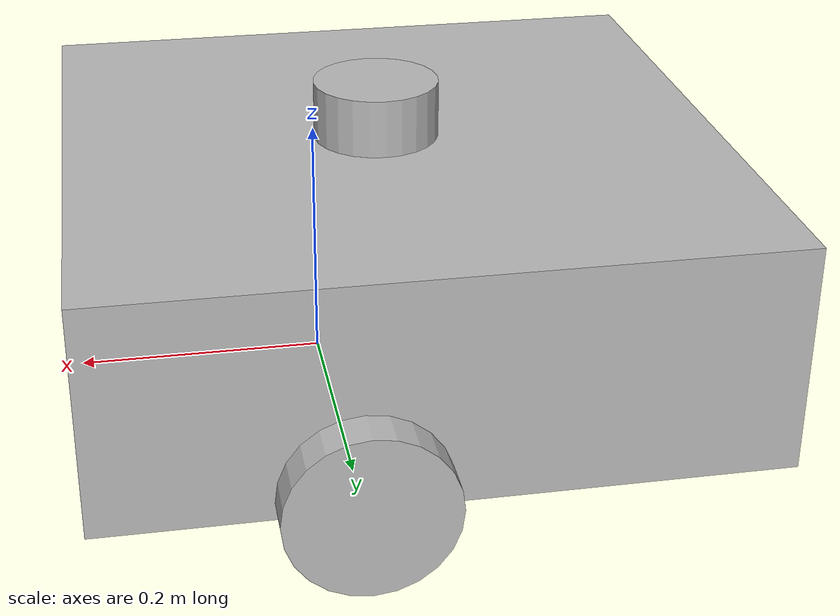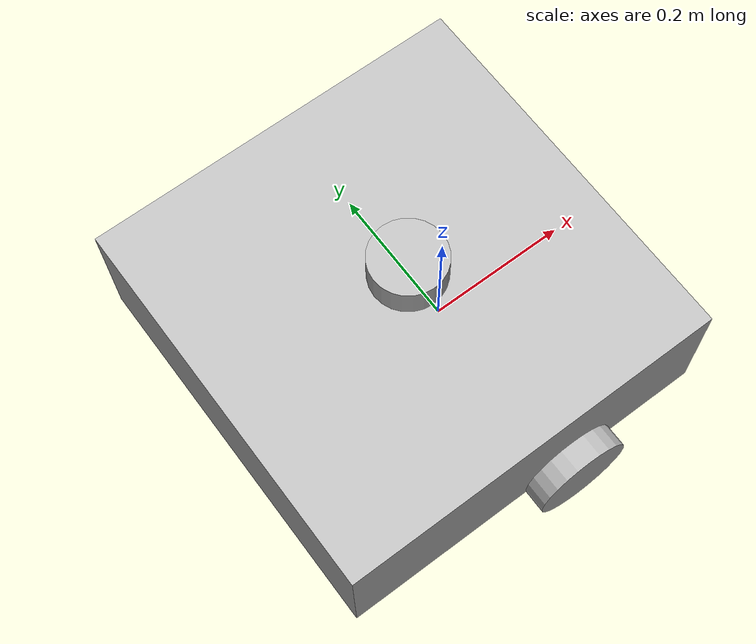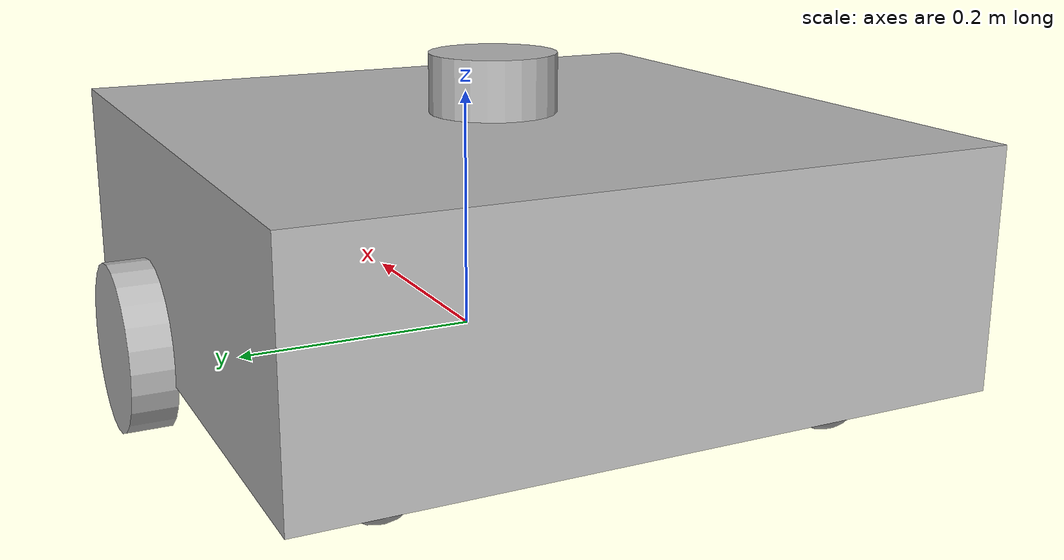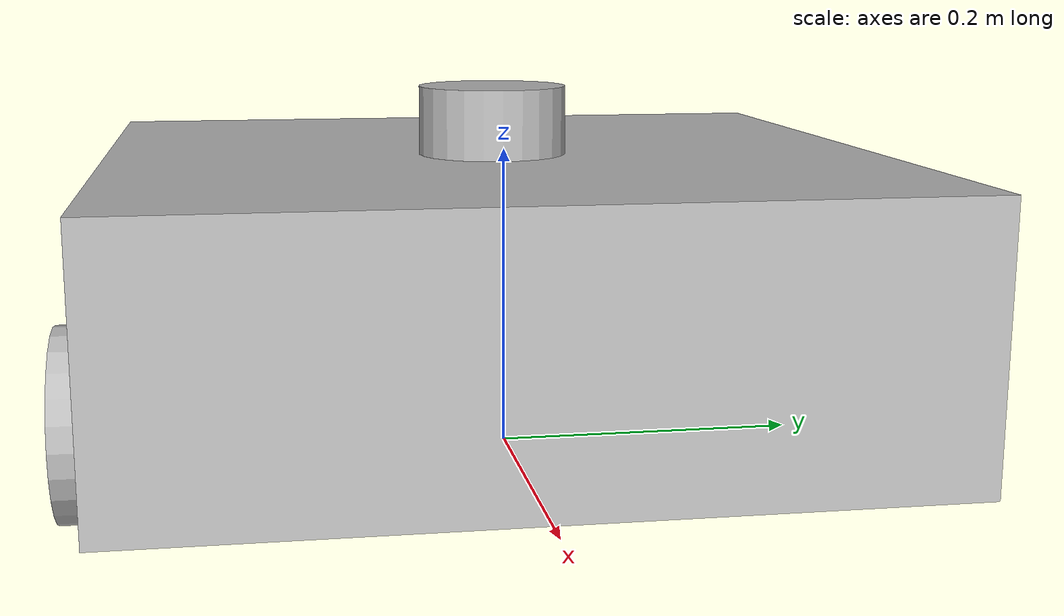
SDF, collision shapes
<?xml version="1.0" ?>
<sdf version="1.8">
  <model name="turtlebot3_waffle">
  <pose>0.0 0.0 0.0 0.0 0.0 0.0</pose>

    <link name="base_footprint"/>

    <link name="base_link">

      <inertial>
        <pose>-0.064 0 0.1 0 0 0</pose>
        <inertia>
          <ixx>4.2111447e-02</ixx>
          <ixy>0</ixy>
          <ixz>0</ixz>
          <iyy>4.2111447e-02</iyy>
          <iyz>0</iyz>
          <izz>7.5254874e-02</izz>
        </inertia>
        <mass>1.3729096e+00</mass>
      </inertial>

      <collision name="base_collision">
        <pose>-0.064 0 0.1 0 0 0</pose>
        <geometry>
          <box>
            <size>0.53 0.53 0.183</size>
          </box>
        </geometry>
      </collision>

      <visual name="base_visual">
        <pose>-0.064 0 0 0 0 0</pose>
        <geometry>
          <mesh>
            <uri>model://turtlebot3_common/new/waffle_base.dae</uri>
          </mesh>
        </geometry>
      </visual>
    </link>

    <link name="imu_link">
      <sensor name="tb3_imu" type="imu">
        <always_on>true</always_on>
        <update_rate>200</update_rate>
        <topic>imu</topic>
        <imu>
          <angular_velocity>
            <x>
              <noise type="gaussian">
                <mean>0.0</mean>
                <stddev>2e-4</stddev>
              </noise>
            </x>
            <y>
              <noise type="gaussian">
                <mean>0.0</mean>
                <stddev>2e-4</stddev>
              </noise>
            </y>
            <z>
              <noise type="gaussian">
                <mean>0.0</mean>
                <stddev>2e-4</stddev>
              </noise>
            </z>
          </angular_velocity>
          <linear_acceleration>
            <x>
              <noise type="gaussian">
                <mean>0.0</mean>
                <stddev>1.7e-2</stddev>
              </noise>
            </x>
            <y>
              <noise type="gaussian">
                <mean>0.0</mean>
                <stddev>1.7e-2</stddev>
              </noise>
            </y>
            <z>
              <noise type="gaussian">
                <mean>0.0</mean>
                <stddev>1.7e-2</stddev>
              </noise>
            </z>
          </linear_acceleration>
        </imu>
      </sensor>
    </link>

    <link name="base_scan">
      <inertial>
        <pose>-0.052 0 0.211 0 0 0</pose>
        <inertia>
          <ixx>0.001</ixx>
          <ixy>0.000</ixy>
          <ixz>0.000</ixz>
          <iyy>0.001</iyy>
          <iyz>0.000</iyz>
          <izz>0.001</izz>
        </inertia>
        <mass>0.114</mass>
      </inertial>

      <collision name="lidar_sensor_collision">
        <pose>-0.052 0 0.211 0 0 0</pose>
        <geometry>
          <cylinder>
            <radius>0.0508</radius>
            <length>0.055</length>
          </cylinder>
        </geometry>
      </collision>

      <visual name="lidar_sensor_visual">
        <pose>-0.064 0 0.221 0 0 0</pose>
        <geometry>
          <mesh>
            <uri>model://turtlebot3_common/new/lds.dae</uri>
            <scale>0.1 0.1 0.1</scale>
          </mesh>
        </geometry>
      </visual>

      <sensor name="hls_lfcd_lds" type="gpu_lidar">
        <always_on>true</always_on>
        <visualize>true</visualize>
        <pose>-0.064 0 0.221 0 0 0</pose>
        <update_rate>5</update_rate>
        <topic>scan</topic>
        <gz_frame_id>base_scan</gz_frame_id>
        <lidar>
          <scan>
            <horizontal>
              <samples>360</samples>
              <resolution>1.000000</resolution>
              <min_angle>0.000000</min_angle>
              <max_angle>6.280000</max_angle>
            </horizontal>
          </scan>
          <range>
            <min>0.120000</min>
            <max>5.0</max>
            <resolution>0.015000</resolution>
          </range>
          <noise>
            <type>gaussian</type>
            <mean>0.0</mean>
            <stddev>0.01</stddev>
          </noise>
        </lidar>
      </sensor>
    </link>

    <link name="wheel_left_link">
      <inertial>
        <pose>0.0 0.28 0.023 1.57 0 0</pose>
        <mass>0.2</mass>
        <inertia>
          <ixx>0.00023821666666666672</ixx>
          <ixy>0.0</ixy>
          <ixz>0.0</ixz>
          <iyy>0.00023821666666666672</iyy>
          <iyz>0.0</iyz>
          <izz>0.00043560000000000007</izz>
        </inertia>
      </inertial>

      <collision name="wheel_left_collision">
        <pose>0.0 0.28 0.023 1.57 0 0</pose>
        <geometry>
          <cylinder>
            <radius>0.066</radius>
            <length>0.035</length>
          </cylinder>
        </geometry>
      </collision>

      <visual name="wheel_left_visual">
        <pose>0.0 0.28 0.023 0 0 0</pose>
        <geometry>
          <mesh>
            <uri>model://turtlebot3_common/new/left-tire.dae</uri>
          </mesh>
        </geometry>
      </visual>
    </link>

    <link name="wheel_right_link">
      <inertial>
        <pose>0.0 -0.28 0.023 1.57 0 0</pose>
        <mass>0.2</mass>
        <inertia>
          <ixx>0.00023821666666666672</ixx>
          <ixy>0.0</ixy>
          <ixz>0.0</ixz>
          <iyy>0.00023821666666666672</iyy>
          <iyz>0.0</iyz>
          <izz>0.00043560000000000007</izz>
        </inertia>
      </inertial>
      <collision name="wheel_right_collision">
        <pose>0.0 -0.28 0.023 1.57 0 0</pose>
        <geometry>
          <cylinder>
            <radius>0.066</radius>
            <length>0.035</length>
          </cylinder>
        </geometry>
      </collision>

      <visual name="wheel_right_visual">
        <pose>0.0 -0.28 0.023 0 0 3.141592654</pose>
        <geometry>
          <mesh>
            <uri>model://turtlebot3_common/new/left-tire.dae</uri>
          </mesh>
        </geometry>
      </visual>
    </link>

    <link name='caster_back_right_link'>
      <pose>-0.25 -0.18 -0.004 -1.57 0 0</pose>
      <inertial>
        <mass>1.0</mass>
        <inertia>
          <ixx>0.00036</ixx>
          <ixy>0.0</ixy>
          <ixz>0.0</ixz>
          <iyy>0.00036</iyy>
          <iyz>0.0</iyz>
          <izz>0.00036</izz>
        </inertia>
      </inertial>
      <visual name='caster_back_right_visual'>
        <geometry>
          <sphere>
           <radius>0.03</radius>
          </sphere>
        </geometry>
      </visual>
      <collision name='collision'>
        <geometry>
          <sphere>
            <radius>0.03000</radius>
          </sphere>
        </geometry>
      </collision>
    </link>

    <link name='caster_back_left_link'>
      <pose>-0.25 0.18 -0.004 -1.57 0 0</pose>
      <inertial>
        <mass>1.0</mass>
        <inertia>
          <ixx>0.00036</ixx>
          <ixy>0.0</ixy>
          <ixz>0.0</ixz>
          <iyy>0.00036</iyy>
          <iyz>0.0</iyz>
          <izz>0.00036</izz>
        </inertia>
      </inertial>
      <visual name='caster_back_left_visual'>
        <geometry>
          <sphere>
           <radius>0.03</radius>
          </sphere>
        </geometry>
      </visual>
      <collision name='collision'>
        <geometry>
          <sphere>
            <radius>0.03000</radius>
          </sphere>
        </geometry>
      </collision>
    </link>

    <link name="camera_link"/>

    <link name="camera_rgb_frame">
      <inertial>
        <pose>0.069 -0.047 0.107 0 0 0</pose>
        <inertia>
          <ixx>2.083333333333334e-05</ixx>
          <ixy>0.000</ixy>
          <ixz>0.000</ixz>
          <iyy>2.083333333333334e-05</iyy>
          <iyz>0.000</iyz>
          <izz>2.083333333333334e-05</izz>
        </inertia>
        <mass>0.05</mass>
      </inertial>

      <pose>0.069 -0.047 0.107 0 0 0</pose>
      <sensor name="camera" type="camera">
        <always_on>true</always_on>
        <visualize>true</visualize>
        <update_rate>30</update_rate>
        <topic>camera/image_raw</topic>
        <gz_frame_id>camera_rgb_frame</gz_frame_id>
        <camera name="intel_realsense_r200">
          <camera_info_topic>camera/camera_info</camera_info_topic>
          <horizontal_fov>1.02974</horizontal_fov>
          <image>
            <width>1920</width>
            <height>1080</height>
            <format>R8G8B8</format>
          </image>
          <clip>
            <near>0.02</near>
            <far>300</far>
          </clip>
          <noise>
            <type>gaussian</type>
            <mean>0.0</mean>
            <stddev>0.007</stddev>
          </noise>
        </camera>
      </sensor>
    </link>

    <joint name="base_joint" type="fixed">
      <parent>base_footprint</parent>
      <child>base_link</child>
      <pose>0.0 0.0 0.010 0 0 0</pose>
    </joint>

    <joint name="wheel_left_joint" type="revolute">
      <parent>base_link</parent>
      <child>wheel_left_link</child>
      <pose>0.0 0.144 0.023 -1.57 0 0</pose>
      <axis>
        <xyz>0 0 1</xyz>
        <effort>20</effort>
      </axis>
    </joint>

    <joint name="wheel_right_joint" type="revolute">
      <parent>base_link</parent>
      <child>wheel_right_link</child>
      <pose>0.0 -0.144 0.023 -1.57 0 0</pose>
      <axis>
        <xyz>0 0 1</xyz>
        <effort>20</effort>
      </axis>
    </joint>

    <joint name='caster_back_right_joint' type='ball'>
      <parent>base_link</parent>
      <child>caster_back_right_link</child>
    </joint>

    <joint name='caster_back_left_joint' type='ball'>
      <parent>base_link</parent>
      <child>caster_back_left_link</child>
    </joint>

    <joint name="imu_joint" type="fixed">
      <parent>base_link</parent>
      <child>imu_link</child>
      <pose>-0.032 0 0.068 0 0 0</pose>
      <axis>
        <xyz>0 0 1</xyz>
      </axis>
    </joint>

    <joint name="lidar_joint" type="fixed">
      <parent>base_link</parent>
      <child>base_scan</child>
      <pose>-0.064 0 0.121 0 0 0</pose>
      <axis>
        <xyz>0 0 1</xyz>
      </axis>
    </joint>

    <joint name="camera_joint" type="fixed">
      <parent>base_link</parent>
      <child>camera_link</child>
      <pose>0.064 -0.065 0.094 0 0 0</pose>
      <axis>
        <xyz>0 0 1</xyz>
      </axis>
    </joint>

    <joint name="camera_rgb_joint" type="fixed">
      <parent>camera_link</parent>
      <child>camera_rgb_frame</child>
      <pose>0.005 0.018 0.013 0 0 0</pose>
      <axis>
        <xyz>0 0 1</xyz>
      </axis>
    </joint>

    <plugin filename="gz-sim-diff-drive-system" name="gz::sim::systems::DiffDrive">
      <!-- wheels -->
      <left_joint>wheel_left_joint</left_joint>
      <right_joint>wheel_right_joint</right_joint>

      <!-- kinematics -->
      <wheel_separation>0.56</wheel_separation>
      <wheel_radius>0.066</wheel_radius>

      <topic>/cmd_vel</topic>

      <odom_topic>/odom</odom_topic>
      <frame_id>odom</frame_id>
      <child_frame_id>base_link</child_frame_id>
      <odom_publisher_frequency>10</odom_publisher_frequency>

      <tf_topic>/tf</tf_topic> <!-- Short topic name for tf output -->
    </plugin>

    <plugin filename="gz-sim-joint-state-publisher-system"
        name="gz::sim::systems::JointStatePublisher">
      <topic>joint_states</topic>
      <joint_name>wheel_left_joint</joint_name>
      <joint_name>wheel_right_joint</joint_name>
    </plugin>

  </model>
</sdf>
